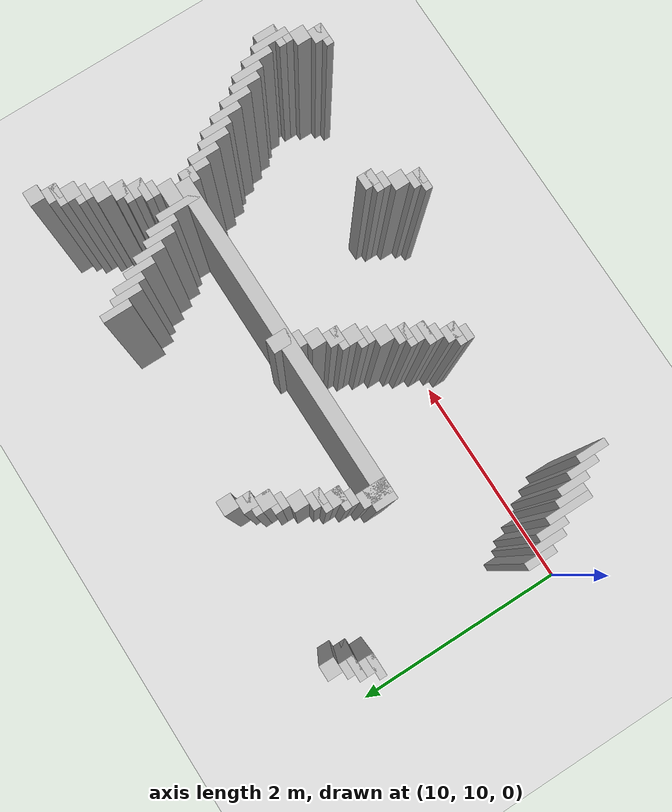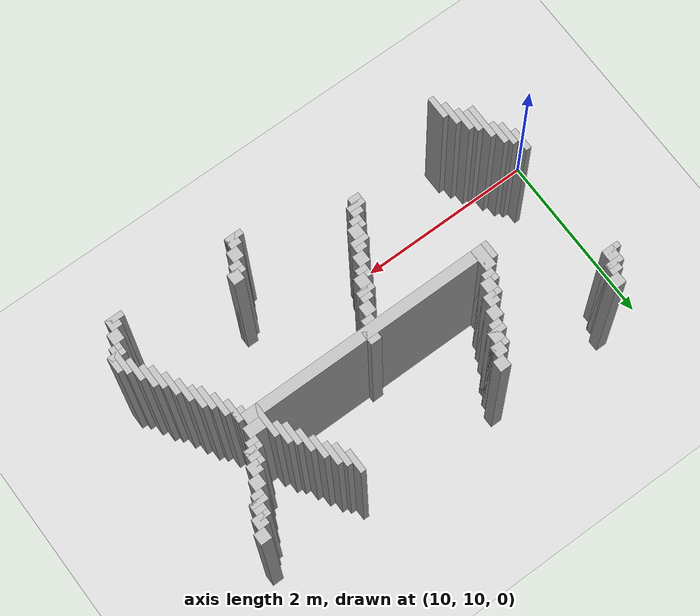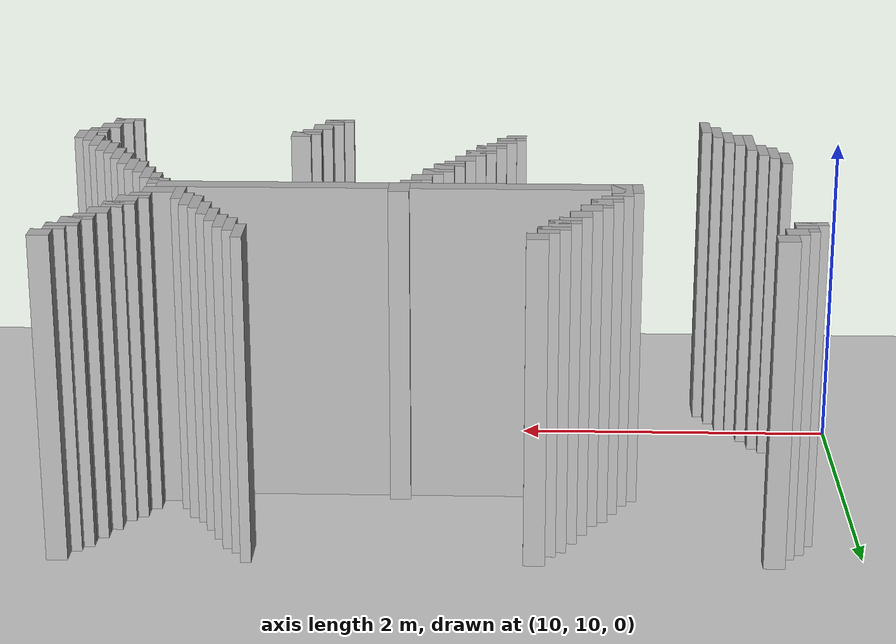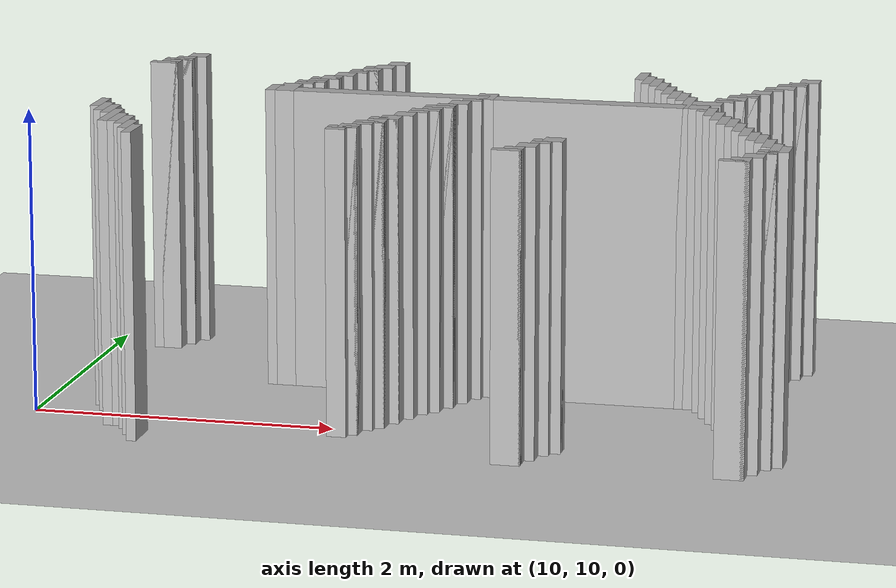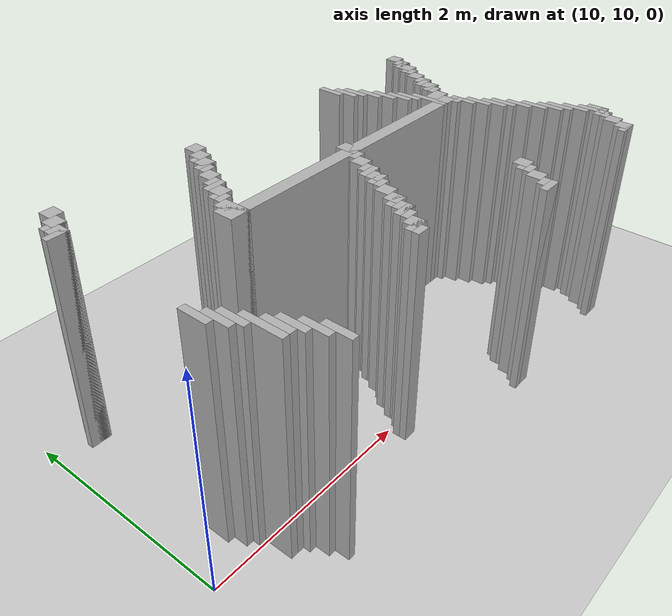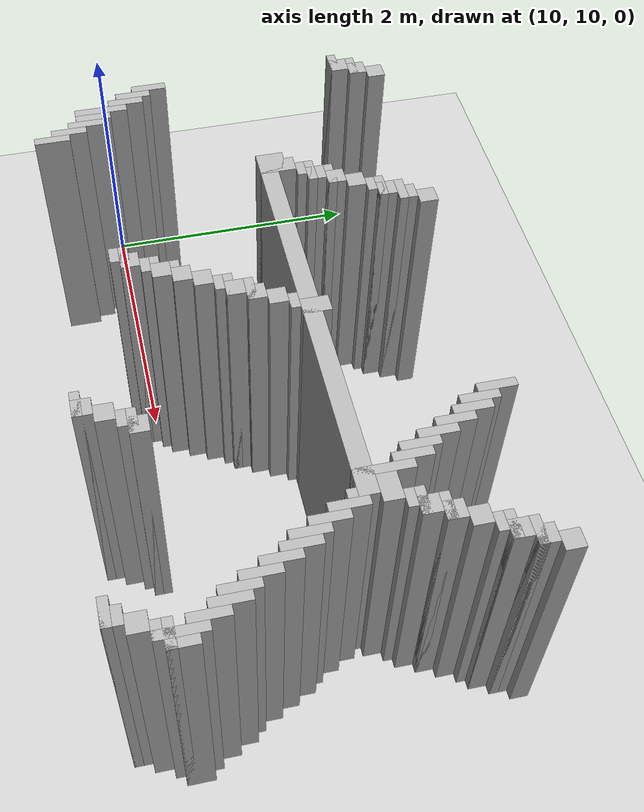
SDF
<sdf version="1.6">
 <world name="slam_world">
  <model name="ground_plane">
   <static>true</static>
   <link name="link">
    <collision name="collision">
     <geometry><plane><normal>0 0 1</normal><size>100 100</size></plane></geometry>
    </collision>
    <visual name="visual">
     <geometry><plane><normal>0 0 1</normal><size>100 100</size></plane></geometry>
     <material>
      <ambient>0.8 0.8 0.8 1</ambient>
      <diffuse>0.8 0.8 0.8 1</diffuse>
      <specular>0.8 0.8 0.8 1</specular>
     </material>
    </visual>
   </link>
  </model>
  <model name="wall_1165">
   <static>true</static>
   <pose>10.53191489361702 12.063829787234042 1.0 0 0 0</pose>
   <link name="link">
    <collision name="collision">
     <geometry><box><size>0.1276595744680851 0.1276595744680851 2.0</size></box></geometry>
    </collision>
    <visual name="visual">
     <geometry><box><size>0.1276595744680851 0.1276595744680851 2.0</size></box></geometry>
     <material><ambient>0.5 0.5 0.5 1</ambient><diffuse>0.7 0.7 0.7 1</diffuse></material>
    </visual>
   </link>
  </model>
  <model name="wall_1166">
   <static>true</static>
   <pose>11.936170212765957 12.063829787234042 1.0 0 0 0</pose>
   <link name="link">
    <collision name="collision">
     <geometry><box><size>0.1276595744680851 0.1276595744680851 2.0</size></box></geometry>
    </collision>
    <visual name="visual">
     <geometry><box><size>0.1276595744680851 0.1276595744680851 2.0</size></box></geometry>
     <material><ambient>0.5 0.5 0.5 1</ambient><diffuse>0.7 0.7 0.7 1</diffuse></material>
    </visual>
   </link>
  </model>
  <model name="wall_1167">
   <static>true</static>
   <pose>13.627659574468083 11.999999999999998 1.0 0 0 0</pose>
   <link name="link">
    <collision name="collision">
     <geometry><box><size>0.06382978723404255 0.2553191489361702 2.0</size></box></geometry>
    </collision>
    <visual name="visual">
     <geometry><box><size>0.06382978723404255 0.2553191489361702 2.0</size></box></geometry>
     <material><ambient>0.5 0.5 0.5 1</ambient><diffuse>0.7 0.7 0.7 1</diffuse></material>
    </visual>
   </link>
  </model>
  <model name="wall_1168">
   <static>true</static>
   <pose>14.744680851063828 12.063829787234042 1.0 0 0 0</pose>
   <link name="link">
    <collision name="collision">
     <geometry><box><size>0.1276595744680851 0.1276595744680851 2.0</size></box></geometry>
    </collision>
    <visual name="visual">
     <geometry><box><size>0.1276595744680851 0.1276595744680851 2.0</size></box></geometry>
     <material><ambient>0.5 0.5 0.5 1</ambient><diffuse>0.7 0.7 0.7 1</diffuse></material>
    </visual>
   </link>
  </model>
  <model name="wall_1175">
   <static>true</static>
   <pose>10.468085106382977 11.936170212765957 1.0 0 0 0</pose>
   <link name="link">
    <collision name="collision">
     <geometry><box><size>0.1276595744680851 0.1276595744680851 2.0</size></box></geometry>
    </collision>
    <visual name="visual">
     <geometry><box><size>0.1276595744680851 0.1276595744680851 2.0</size></box></geometry>
     <material><ambient>0.5 0.5 0.5 1</ambient><diffuse>0.7 0.7 0.7 1</diffuse></material>
    </visual>
   </link>
  </model>
  <model name="wall_1176">
   <static>true</static>
   <pose>11.872340425531913 11.936170212765957 1.0 0 0 0</pose>
   <link name="link">
    <collision name="collision">
     <geometry><box><size>0.1276595744680851 0.1276595744680851 2.0</size></box></geometry>
    </collision>
    <visual name="visual">
     <geometry><box><size>0.1276595744680851 0.1276595744680851 2.0</size></box></geometry>
     <material><ambient>0.5 0.5 0.5 1</ambient><diffuse>0.7 0.7 0.7 1</diffuse></material>
    </visual>
   </link>
  </model>
  <model name="wall_1177">
   <static>true</static>
   <pose>13.691489361702127 11.872340425531913 1.0 0 0 0</pose>
   <link name="link">
    <collision name="collision">
     <geometry><box><size>0.06382978723404255 0.2553191489361702 2.0</size></box></geometry>
    </collision>
    <visual name="visual">
     <geometry><box><size>0.06382978723404255 0.2553191489361702 2.0</size></box></geometry>
     <material><ambient>0.5 0.5 0.5 1</ambient><diffuse>0.7 0.7 0.7 1</diffuse></material>
    </visual>
   </link>
  </model>
  <model name="wall_1178">
   <static>true</static>
   <pose>14.680851063829786 11.936170212765957 1.0 0 0 0</pose>
   <link name="link">
    <collision name="collision">
     <geometry><box><size>0.1276595744680851 0.1276595744680851 2.0</size></box></geometry>
    </collision>
    <visual name="visual">
     <geometry><box><size>0.1276595744680851 0.1276595744680851 2.0</size></box></geometry>
     <material><ambient>0.5 0.5 0.5 1</ambient><diffuse>0.7 0.7 0.7 1</diffuse></material>
    </visual>
   </link>
  </model>
  <model name="wall_1185">
   <static>true</static>
   <pose>10.436170212765957 11.904255319148936 1.0 0 0 0</pose>
   <link name="link">
    <collision name="collision">
     <geometry><box><size>0.19148936170212766 0.06382978723404255 2.0</size></box></geometry>
    </collision>
    <visual name="visual">
     <geometry><box><size>0.19148936170212766 0.06382978723404255 2.0</size></box></geometry>
     <material><ambient>0.5 0.5 0.5 1</ambient><diffuse>0.7 0.7 0.7 1</diffuse></material>
    </visual>
   </link>
  </model>
  <model name="wall_1186">
   <static>true</static>
   <pose>11.840425531914892 11.904255319148936 1.0 0 0 0</pose>
   <link name="link">
    <collision name="collision">
     <geometry><box><size>0.19148936170212766 0.06382978723404255 2.0</size></box></geometry>
    </collision>
    <visual name="visual">
     <geometry><box><size>0.19148936170212766 0.06382978723404255 2.0</size></box></geometry>
     <material><ambient>0.5 0.5 0.5 1</ambient><diffuse>0.7 0.7 0.7 1</diffuse></material>
    </visual>
   </link>
  </model>
  <model name="wall_1187">
   <static>true</static>
   <pose>13.755319148936168 11.808510638297872 1.0 0 0 0</pose>
   <link name="link">
    <collision name="collision">
     <geometry><box><size>0.06382978723404255 0.2553191489361702 2.0</size></box></geometry>
    </collision>
    <visual name="visual">
     <geometry><box><size>0.06382978723404255 0.2553191489361702 2.0</size></box></geometry>
     <material><ambient>0.5 0.5 0.5 1</ambient><diffuse>0.7 0.7 0.7 1</diffuse></material>
    </visual>
   </link>
  </model>
  <model name="wall_1188">
   <static>true</static>
   <pose>14.648936170212766 11.904255319148936 1.0 0 0 0</pose>
   <link name="link">
    <collision name="collision">
     <geometry><box><size>0.19148936170212766 0.06382978723404255 2.0</size></box></geometry>
    </collision>
    <visual name="visual">
     <geometry><box><size>0.19148936170212766 0.06382978723404255 2.0</size></box></geometry>
     <material><ambient>0.5 0.5 0.5 1</ambient><diffuse>0.7 0.7 0.7 1</diffuse></material>
    </visual>
   </link>
  </model>
  <model name="wall_1193">
   <static>true</static>
   <pose>10.404255319148936 11.808510638297872 1.0 0 0 0</pose>
   <link name="link">
    <collision name="collision">
     <geometry><box><size>0.1276595744680851 0.1276595744680851 2.0</size></box></geometry>
    </collision>
    <visual name="visual">
     <geometry><box><size>0.1276595744680851 0.1276595744680851 2.0</size></box></geometry>
     <material><ambient>0.5 0.5 0.5 1</ambient><diffuse>0.7 0.7 0.7 1</diffuse></material>
    </visual>
   </link>
  </model>
  <model name="wall_1194">
   <static>true</static>
   <pose>11.808510638297872 11.808510638297872 1.0 0 0 0</pose>
   <link name="link">
    <collision name="collision">
     <geometry><box><size>0.1276595744680851 0.1276595744680851 2.0</size></box></geometry>
    </collision>
    <visual name="visual">
     <geometry><box><size>0.1276595744680851 0.1276595744680851 2.0</size></box></geometry>
     <material><ambient>0.5 0.5 0.5 1</ambient><diffuse>0.7 0.7 0.7 1</diffuse></material>
    </visual>
   </link>
  </model>
  <model name="wall_1195">
   <static>true</static>
   <pose>14.617021276595743 11.808510638297872 1.0 0 0 0</pose>
   <link name="link">
    <collision name="collision">
     <geometry><box><size>0.1276595744680851 0.1276595744680851 2.0</size></box></geometry>
    </collision>
    <visual name="visual">
     <geometry><box><size>0.1276595744680851 0.1276595744680851 2.0</size></box></geometry>
     <material><ambient>0.5 0.5 0.5 1</ambient><diffuse>0.7 0.7 0.7 1</diffuse></material>
    </visual>
   </link>
  </model>
  <model name="wall_1202">
   <static>true</static>
   <pose>10.372340425531915 11.77659574468085 1.0 0 0 0</pose>
   <link name="link">
    <collision name="collision">
     <geometry><box><size>0.19148936170212766 0.06382978723404255 2.0</size></box></geometry>
    </collision>
    <visual name="visual">
     <geometry><box><size>0.19148936170212766 0.06382978723404255 2.0</size></box></geometry>
     <material><ambient>0.5 0.5 0.5 1</ambient><diffuse>0.7 0.7 0.7 1</diffuse></material>
    </visual>
   </link>
  </model>
  <model name="wall_1203">
   <static>true</static>
   <pose>11.77659574468085 11.77659574468085 1.0 0 0 0</pose>
   <link name="link">
    <collision name="collision">
     <geometry><box><size>0.19148936170212766 0.06382978723404255 2.0</size></box></geometry>
    </collision>
    <visual name="visual">
     <geometry><box><size>0.19148936170212766 0.06382978723404255 2.0</size></box></geometry>
     <material><ambient>0.5 0.5 0.5 1</ambient><diffuse>0.7 0.7 0.7 1</diffuse></material>
    </visual>
   </link>
  </model>
  <model name="wall_1204">
   <static>true</static>
   <pose>13.819148936170212 11.680851063829786 1.0 0 0 0</pose>
   <link name="link">
    <collision name="collision">
     <geometry><box><size>0.06382978723404255 0.2553191489361702 2.0</size></box></geometry>
    </collision>
    <visual name="visual">
     <geometry><box><size>0.06382978723404255 0.2553191489361702 2.0</size></box></geometry>
     <material><ambient>0.5 0.5 0.5 1</ambient><diffuse>0.7 0.7 0.7 1</diffuse></material>
    </visual>
   </link>
  </model>
  <model name="wall_1205">
   <static>true</static>
   <pose>14.585106382978722 11.77659574468085 1.0 0 0 0</pose>
   <link name="link">
    <collision name="collision">
     <geometry><box><size>0.19148936170212766 0.06382978723404255 2.0</size></box></geometry>
    </collision>
    <visual name="visual">
     <geometry><box><size>0.19148936170212766 0.06382978723404255 2.0</size></box></geometry>
     <material><ambient>0.5 0.5 0.5 1</ambient><diffuse>0.7 0.7 0.7 1</diffuse></material>
    </visual>
   </link>
  </model>
  <model name="wall_1210">
   <static>true</static>
   <pose>11.744680851063828 11.712765957446807 1.0 0 0 0</pose>
   <link name="link">
    <collision name="collision">
     <geometry><box><size>0.1276595744680851 0.06382978723404255 2.0</size></box></geometry>
    </collision>
    <visual name="visual">
     <geometry><box><size>0.1276595744680851 0.06382978723404255 2.0</size></box></geometry>
     <material><ambient>0.5 0.5 0.5 1</ambient><diffuse>0.7 0.7 0.7 1</diffuse></material>
    </visual>
   </link>
  </model>
  <model name="wall_1211">
   <static>true</static>
   <pose>14.553191489361701 11.712765957446807 1.0 0 0 0</pose>
   <link name="link">
    <collision name="collision">
     <geometry><box><size>0.1276595744680851 0.06382978723404255 2.0</size></box></geometry>
    </collision>
    <visual name="visual">
     <geometry><box><size>0.1276595744680851 0.06382978723404255 2.0</size></box></geometry>
     <material><ambient>0.5 0.5 0.5 1</ambient><diffuse>0.7 0.7 0.7 1</diffuse></material>
    </visual>
   </link>
  </model>
  <model name="wall_1219">
   <static>true</static>
   <pose>11.680851063829786 11.617021276595743 1.0 0 0 0</pose>
   <link name="link">
    <collision name="collision">
     <geometry><box><size>0.1276595744680851 0.1276595744680851 2.0</size></box></geometry>
    </collision>
    <visual name="visual">
     <geometry><box><size>0.1276595744680851 0.1276595744680851 2.0</size></box></geometry>
     <material><ambient>0.5 0.5 0.5 1</ambient><diffuse>0.7 0.7 0.7 1</diffuse></material>
    </visual>
   </link>
  </model>
  <model name="wall_1220">
   <static>true</static>
   <pose>13.882978723404253 11.553191489361701 1.0 0 0 0</pose>
   <link name="link">
    <collision name="collision">
     <geometry><box><size>0.06382978723404255 0.2553191489361702 2.0</size></box></geometry>
    </collision>
    <visual name="visual">
     <geometry><box><size>0.06382978723404255 0.2553191489361702 2.0</size></box></geometry>
     <material><ambient>0.5 0.5 0.5 1</ambient><diffuse>0.7 0.7 0.7 1</diffuse></material>
    </visual>
   </link>
  </model>
  <model name="wall_1221">
   <static>true</static>
   <pose>14.489361702127658 11.617021276595743 1.0 0 0 0</pose>
   <link name="link">
    <collision name="collision">
     <geometry><box><size>0.1276595744680851 0.1276595744680851 2.0</size></box></geometry>
    </collision>
    <visual name="visual">
     <geometry><box><size>0.1276595744680851 0.1276595744680851 2.0</size></box></geometry>
     <material><ambient>0.5 0.5 0.5 1</ambient><diffuse>0.7 0.7 0.7 1</diffuse></material>
    </visual>
   </link>
  </model>
  <model name="wall_1229">
   <static>true</static>
   <pose>11.617021276595743 11.489361702127658 1.0 0 0 0</pose>
   <link name="link">
    <collision name="collision">
     <geometry><box><size>0.1276595744680851 0.1276595744680851 2.0</size></box></geometry>
    </collision>
    <visual name="visual">
     <geometry><box><size>0.1276595744680851 0.1276595744680851 2.0</size></box></geometry>
     <material><ambient>0.5 0.5 0.5 1</ambient><diffuse>0.7 0.7 0.7 1</diffuse></material>
    </visual>
   </link>
  </model>
  <model name="wall_1230">
   <static>true</static>
   <pose>13.946808510638297 11.425531914893616 1.0 0 0 0</pose>
   <link name="link">
    <collision name="collision">
     <geometry><box><size>0.06382978723404255 0.2553191489361702 2.0</size></box></geometry>
    </collision>
    <visual name="visual">
     <geometry><box><size>0.06382978723404255 0.2553191489361702 2.0</size></box></geometry>
     <material><ambient>0.5 0.5 0.5 1</ambient><diffuse>0.7 0.7 0.7 1</diffuse></material>
    </visual>
   </link>
  </model>
  <model name="wall_1231">
   <static>true</static>
   <pose>14.425531914893616 11.489361702127658 1.0 0 0 0</pose>
   <link name="link">
    <collision name="collision">
     <geometry><box><size>0.1276595744680851 0.1276595744680851 2.0</size></box></geometry>
    </collision>
    <visual name="visual">
     <geometry><box><size>0.1276595744680851 0.1276595744680851 2.0</size></box></geometry>
     <material><ambient>0.5 0.5 0.5 1</ambient><diffuse>0.7 0.7 0.7 1</diffuse></material>
    </visual>
   </link>
  </model>
  <model name="wall_1239">
   <static>true</static>
   <pose>11.585106382978722 11.457446808510637 1.0 0 0 0</pose>
   <link name="link">
    <collision name="collision">
     <geometry><box><size>0.19148936170212766 0.06382978723404255 2.0</size></box></geometry>
    </collision>
    <visual name="visual">
     <geometry><box><size>0.19148936170212766 0.06382978723404255 2.0</size></box></geometry>
     <material><ambient>0.5 0.5 0.5 1</ambient><diffuse>0.7 0.7 0.7 1</diffuse></material>
    </visual>
   </link>
  </model>
  <model name="wall_1240">
   <static>true</static>
   <pose>14.010638297872338 11.361702127659573 1.0 0 0 0</pose>
   <link name="link">
    <collision name="collision">
     <geometry><box><size>0.06382978723404255 0.2553191489361702 2.0</size></box></geometry>
    </collision>
    <visual name="visual">
     <geometry><box><size>0.06382978723404255 0.2553191489361702 2.0</size></box></geometry>
     <material><ambient>0.5 0.5 0.5 1</ambient><diffuse>0.7 0.7 0.7 1</diffuse></material>
    </visual>
   </link>
  </model>
  <model name="wall_1241">
   <static>true</static>
   <pose>14.393617021276595 11.457446808510637 1.0 0 0 0</pose>
   <link name="link">
    <collision name="collision">
     <geometry><box><size>0.19148936170212766 0.06382978723404255 2.0</size></box></geometry>
    </collision>
    <visual name="visual">
     <geometry><box><size>0.19148936170212766 0.06382978723404255 2.0</size></box></geometry>
     <material><ambient>0.5 0.5 0.5 1</ambient><diffuse>0.7 0.7 0.7 1</diffuse></material>
    </visual>
   </link>
  </model>
  <model name="wall_1246">
   <static>true</static>
   <pose>11.553191489361701 11.361702127659573 1.0 0 0 0</pose>
   <link name="link">
    <collision name="collision">
     <geometry><box><size>0.1276595744680851 0.1276595744680851 2.0</size></box></geometry>
    </collision>
    <visual name="visual">
     <geometry><box><size>0.1276595744680851 0.1276595744680851 2.0</size></box></geometry>
     <material><ambient>0.5 0.5 0.5 1</ambient><diffuse>0.7 0.7 0.7 1</diffuse></material>
    </visual>
   </link>
  </model>
  <model name="wall_1247">
   <static>true</static>
   <pose>14.361702127659573 11.361702127659573 1.0 0 0 0</pose>
   <link name="link">
    <collision name="collision">
     <geometry><box><size>0.1276595744680851 0.1276595744680851 2.0</size></box></geometry>
    </collision>
    <visual name="visual">
     <geometry><box><size>0.1276595744680851 0.1276595744680851 2.0</size></box></geometry>
     <material><ambient>0.5 0.5 0.5 1</ambient><diffuse>0.7 0.7 0.7 1</diffuse></material>
    </visual>
   </link>
  </model>
  <model name="wall_1255">
   <static>true</static>
   <pose>11.52127659574468 11.329787234042552 1.0 0 0 0</pose>
   <link name="link">
    <collision name="collision">
     <geometry><box><size>0.19148936170212766 0.06382978723404255 2.0</size></box></geometry>
    </collision>
    <visual name="visual">
     <geometry><box><size>0.19148936170212766 0.06382978723404255 2.0</size></box></geometry>
     <material><ambient>0.5 0.5 0.5 1</ambient><diffuse>0.7 0.7 0.7 1</diffuse></material>
    </visual>
   </link>
  </model>
  <model name="wall_1256">
   <static>true</static>
   <pose>14.074468085106382 11.170212765957446 1.0 0 0 0</pose>
   <link name="link">
    <collision name="collision">
     <geometry><box><size>0.06382978723404255 0.3829787234042553 2.0</size></box></geometry>
    </collision>
    <visual name="visual">
     <geometry><box><size>0.06382978723404255 0.3829787234042553 2.0</size></box></geometry>
     <material><ambient>0.5 0.5 0.5 1</ambient><diffuse>0.7 0.7 0.7 1</diffuse></material>
    </visual>
   </link>
  </model>
  <model name="wall_1257">
   <static>true</static>
   <pose>14.329787234042552 11.329787234042552 1.0 0 0 0</pose>
   <link name="link">
    <collision name="collision">
     <geometry><box><size>0.19148936170212766 0.06382978723404255 2.0</size></box></geometry>
    </collision>
    <visual name="visual">
     <geometry><box><size>0.19148936170212766 0.06382978723404255 2.0</size></box></geometry>
     <material><ambient>0.5 0.5 0.5 1</ambient><diffuse>0.7 0.7 0.7 1</diffuse></material>
    </visual>
   </link>
  </model>
  <model name="wall_1262">
   <static>true</static>
   <pose>11.489361702127658 11.26595744680851 1.0 0 0 0</pose>
   <link name="link">
    <collision name="collision">
     <geometry><box><size>0.1276595744680851 0.06382978723404255 2.0</size></box></geometry>
    </collision>
    <visual name="visual">
     <geometry><box><size>0.1276595744680851 0.06382978723404255 2.0</size></box></geometry>
     <material><ambient>0.5 0.5 0.5 1</ambient><diffuse>0.7 0.7 0.7 1</diffuse></material>
    </visual>
   </link>
  </model>
  <model name="wall_1263">
   <static>true</static>
   <pose>14.297872340425531 11.26595744680851 1.0 0 0 0</pose>
   <link name="link">
    <collision name="collision">
     <geometry><box><size>0.1276595744680851 0.06382978723404255 2.0</size></box></geometry>
    </collision>
    <visual name="visual">
     <geometry><box><size>0.1276595744680851 0.06382978723404255 2.0</size></box></geometry>
     <material><ambient>0.5 0.5 0.5 1</ambient><diffuse>0.7 0.7 0.7 1</diffuse></material>
    </visual>
   </link>
  </model>
  <model name="wall_1269">
   <static>true</static>
   <pose>11.425531914893616 11.106382978723403 1.0 0 0 0</pose>
   <link name="link">
    <collision name="collision">
     <geometry><box><size>0.1276595744680851 0.2553191489361702 2.0</size></box></geometry>
    </collision>
    <visual name="visual">
     <geometry><box><size>0.1276595744680851 0.2553191489361702 2.0</size></box></geometry>
     <material><ambient>0.5 0.5 0.5 1</ambient><diffuse>0.7 0.7 0.7 1</diffuse></material>
    </visual>
   </link>
  </model>
  <model name="wall_1270">
   <static>true</static>
   <pose>14.202127659574467 11.170212765957446 1.0 0 0 0</pose>
   <link name="link">
    <collision name="collision">
     <geometry><box><size>0.19148936170212766 0.1276595744680851 2.0</size></box></geometry>
    </collision>
    <visual name="visual">
     <geometry><box><size>0.19148936170212766 0.1276595744680851 2.0</size></box></geometry>
     <material><ambient>0.5 0.5 0.5 1</ambient><diffuse>0.7 0.7 0.7 1</diffuse></material>
    </visual>
   </link>
  </model>
  <model name="wall_1275">
   <static>true</static>
   <pose>11.393617021276595 11.074468085106382 1.0 0 0 0</pose>
   <link name="link">
    <collision name="collision">
     <geometry><box><size>0.19148936170212766 0.19148936170212766 2.0</size></box></geometry>
    </collision>
    <visual name="visual">
     <geometry><box><size>0.19148936170212766 0.19148936170212766 2.0</size></box></geometry>
     <material><ambient>0.5 0.5 0.5 1</ambient><diffuse>0.7 0.7 0.7 1</diffuse></material>
    </visual>
   </link>
  </model>
  <model name="wall_1276">
   <static>true</static>
   <pose>12.76595744680851 11.074468085106382 1.0 0 0 0</pose>
   <link name="link">
    <collision name="collision">
     <geometry><box><size>0.1276595744680851 0.19148936170212766 2.0</size></box></geometry>
    </collision>
    <visual name="visual">
     <geometry><box><size>0.1276595744680851 0.19148936170212766 2.0</size></box></geometry>
     <material><ambient>0.5 0.5 0.5 1</ambient><diffuse>0.7 0.7 0.7 1</diffuse></material>
    </visual>
   </link>
  </model>
  <model name="wall_1282">
   <static>true</static>
   <pose>12.861702127659573 11.042553191489361 1.0 0 0 0</pose>
   <link name="link">
    <collision name="collision">
     <geometry><box><size>2.7446808510638294 0.1276595744680851 2.0</size></box></geometry>
    </collision>
    <visual name="visual">
     <geometry><box><size>2.7446808510638294 0.1276595744680851 2.0</size></box></geometry>
     <material><ambient>0.5 0.5 0.5 1</ambient><diffuse>0.7 0.7 0.7 1</diffuse></material>
    </visual>
   </link>
  </model>
  <model name="wall_1288">
   <static>true</static>
   <pose>14.265957446808509 10.914893617021276 1.0 0 0 0</pose>
   <link name="link">
    <collision name="collision">
     <geometry><box><size>0.06382978723404255 0.2553191489361702 2.0</size></box></geometry>
    </collision>
    <visual name="visual">
     <geometry><box><size>0.06382978723404255 0.2553191489361702 2.0</size></box></geometry>
     <material><ambient>0.5 0.5 0.5 1</ambient><diffuse>0.7 0.7 0.7 1</diffuse></material>
    </visual>
   </link>
  </model>
  <model name="wall_1294">
   <static>true</static>
   <pose>12.702127659574467 10.946808510638297 1.0 0 0 0</pose>
   <link name="link">
    <collision name="collision">
     <geometry><box><size>0.1276595744680851 0.06382978723404255 2.0</size></box></geometry>
    </collision>
    <visual name="visual">
     <geometry><box><size>0.1276595744680851 0.06382978723404255 2.0</size></box></geometry>
     <material><ambient>0.5 0.5 0.5 1</ambient><diffuse>0.7 0.7 0.7 1</diffuse></material>
    </visual>
   </link>
  </model>
  <model name="wall_1295">
   <static>true</static>
   <pose>14.234042553191488 10.946808510638297 1.0 0 0 0</pose>
   <link name="link">
    <collision name="collision">
     <geometry><box><size>0.1276595744680851 0.06382978723404255 2.0</size></box></geometry>
    </collision>
    <visual name="visual">
     <geometry><box><size>0.1276595744680851 0.06382978723404255 2.0</size></box></geometry>
     <material><ambient>0.5 0.5 0.5 1</ambient><diffuse>0.7 0.7 0.7 1</diffuse></material>
    </visual>
   </link>
  </model>
  <model name="wall_1301">
   <static>true</static>
   <pose>12.638297872340425 10.851063829787233 1.0 0 0 0</pose>
   <link name="link">
    <collision name="collision">
     <geometry><box><size>0.1276595744680851 0.1276595744680851 2.0</size></box></geometry>
    </collision>
    <visual name="visual">
     <geometry><box><size>0.1276595744680851 0.1276595744680851 2.0</size></box></geometry>
     <material><ambient>0.5 0.5 0.5 1</ambient><diffuse>0.7 0.7 0.7 1</diffuse></material>
    </visual>
   </link>
  </model>
  <model name="wall_1302">
   <static>true</static>
   <pose>14.329787234042552 10.787234042553191 1.0 0 0 0</pose>
   <link name="link">
    <collision name="collision">
     <geometry><box><size>0.06382978723404255 0.2553191489361702 2.0</size></box></geometry>
    </collision>
    <visual name="visual">
     <geometry><box><size>0.06382978723404255 0.2553191489361702 2.0</size></box></geometry>
     <material><ambient>0.5 0.5 0.5 1</ambient><diffuse>0.7 0.7 0.7 1</diffuse></material>
    </visual>
   </link>
  </model>
  <model name="wall_1308">
   <static>true</static>
   <pose>12.574468085106382 10.723404255319148 1.0 0 0 0</pose>
   <link name="link">
    <collision name="collision">
     <geometry><box><size>0.1276595744680851 0.1276595744680851 2.0</size></box></geometry>
    </collision>
    <visual name="visual">
     <geometry><box><size>0.1276595744680851 0.1276595744680851 2.0</size></box></geometry>
     <material><ambient>0.5 0.5 0.5 1</ambient><diffuse>0.7 0.7 0.7 1</diffuse></material>
    </visual>
   </link>
  </model>
  <model name="wall_1309">
   <static>true</static>
   <pose>14.393617021276595 10.659574468085106 1.0 0 0 0</pose>
   <link name="link">
    <collision name="collision">
     <geometry><box><size>0.06382978723404255 0.2553191489361702 2.0</size></box></geometry>
    </collision>
    <visual name="visual">
     <geometry><box><size>0.06382978723404255 0.2553191489361702 2.0</size></box></geometry>
     <material><ambient>0.5 0.5 0.5 1</ambient><diffuse>0.7 0.7 0.7 1</diffuse></material>
    </visual>
   </link>
  </model>
  <model name="wall_1315">
   <static>true</static>
   <pose>12.542553191489361 10.691489361702127 1.0 0 0 0</pose>
   <link name="link">
    <collision name="collision">
     <geometry><box><size>0.19148936170212766 0.06382978723404255 2.0</size></box></geometry>
    </collision>
    <visual name="visual">
     <geometry><box><size>0.19148936170212766 0.06382978723404255 2.0</size></box></geometry>
     <material><ambient>0.5 0.5 0.5 1</ambient><diffuse>0.7 0.7 0.7 1</diffuse></material>
    </visual>
   </link>
  </model>
  <model name="wall_1316">
   <static>true</static>
   <pose>14.457446808510637 10.595744680851062 1.0 0 0 0</pose>
   <link name="link">
    <collision name="collision">
     <geometry><box><size>0.06382978723404255 0.2553191489361702 2.0</size></box></geometry>
    </collision>
    <visual name="visual">
     <geometry><box><size>0.06382978723404255 0.2553191489361702 2.0</size></box></geometry>
     <material><ambient>0.5 0.5 0.5 1</ambient><diffuse>0.7 0.7 0.7 1</diffuse></material>
    </visual>
   </link>
  </model>
  <model name="wall_1318">
   <static>true</static>
   <pose>12.51063829787234 10.595744680851062 1.0 0 0 0</pose>
   <link name="link">
    <collision name="collision">
     <geometry><box><size>0.1276595744680851 0.1276595744680851 2.0</size></box></geometry>
    </collision>
    <visual name="visual">
     <geometry><box><size>0.1276595744680851 0.1276595744680851 2.0</size></box></geometry>
     <material><ambient>0.5 0.5 0.5 1</ambient><diffuse>0.7 0.7 0.7 1</diffuse></material>
    </visual>
   </link>
  </model>
  <model name="wall_1324">
   <static>true</static>
   <pose>12.478723404255318 10.563829787234042 1.0 0 0 0</pose>
   <link name="link">
    <collision name="collision">
     <geometry><box><size>0.19148936170212766 0.06382978723404255 2.0</size></box></geometry>
    </collision>
    <visual name="visual">
     <geometry><box><size>0.19148936170212766 0.06382978723404255 2.0</size></box></geometry>
     <material><ambient>0.5 0.5 0.5 1</ambient><diffuse>0.7 0.7 0.7 1</diffuse></material>
    </visual>
   </link>
  </model>
  <model name="wall_1325">
   <static>true</static>
   <pose>14.52127659574468 10.468085106382977 1.0 0 0 0</pose>
   <link name="link">
    <collision name="collision">
     <geometry><box><size>0.06382978723404255 0.2553191489361702 2.0</size></box></geometry>
    </collision>
    <visual name="visual">
     <geometry><box><size>0.06382978723404255 0.2553191489361702 2.0</size></box></geometry>
     <material><ambient>0.5 0.5 0.5 1</ambient><diffuse>0.7 0.7 0.7 1</diffuse></material>
    </visual>
   </link>
  </model>
  <model name="wall_1327">
   <static>true</static>
   <pose>12.446808510638297 10.5 1.0 0 0 0</pose>
   <link name="link">
    <collision name="collision">
     <geometry><box><size>0.1276595744680851 0.06382978723404255 2.0</size></box></geometry>
    </collision>
    <visual name="visual">
     <geometry><box><size>0.1276595744680851 0.06382978723404255 2.0</size></box></geometry>
     <material><ambient>0.5 0.5 0.5 1</ambient><diffuse>0.7 0.7 0.7 1</diffuse></material>
    </visual>
   </link>
  </model>
  <model name="wall_1332">
   <static>true</static>
   <pose>10.372340425531915 10.340425531914892 1.0 0 0 0</pose>
   <link name="link">
    <collision name="collision">
     <geometry><box><size>0.06382978723404255 0.2553191489361702 2.0</size></box></geometry>
    </collision>
    <visual name="visual">
     <geometry><box><size>0.06382978723404255 0.2553191489361702 2.0</size></box></geometry>
     <material><ambient>0.5 0.5 0.5 1</ambient><diffuse>0.7 0.7 0.7 1</diffuse></material>
    </visual>
   </link>
  </model>
  <model name="wall_1333">
   <static>true</static>
   <pose>12.382978723404255 10.404255319148936 1.0 0 0 0</pose>
   <link name="link">
    <collision name="collision">
     <geometry><box><size>0.1276595744680851 0.1276595744680851 2.0</size></box></geometry>
    </collision>
    <visual name="visual">
     <geometry><box><size>0.1276595744680851 0.1276595744680851 2.0</size></box></geometry>
     <material><ambient>0.5 0.5 0.5 1</ambient><diffuse>0.7 0.7 0.7 1</diffuse></material>
    </visual>
   </link>
  </model>
  <model name="wall_1334">
   <static>true</static>
   <pose>14.585106382978722 10.340425531914892 1.0 0 0 0</pose>
   <link name="link">
    <collision name="collision">
     <geometry><box><size>0.06382978723404255 0.2553191489361702 2.0</size></box></geometry>
    </collision>
    <visual name="visual">
     <geometry><box><size>0.06382978723404255 0.2553191489361702 2.0</size></box></geometry>
     <material><ambient>0.5 0.5 0.5 1</ambient><diffuse>0.7 0.7 0.7 1</diffuse></material>
    </visual>
   </link>
  </model>
  <model name="wall_1339">
   <static>true</static>
   <pose>10.436170212765957 10.212765957446807 1.0 0 0 0</pose>
   <link name="link">
    <collision name="collision">
     <geometry><box><size>0.06382978723404255 0.2553191489361702 2.0</size></box></geometry>
    </collision>
    <visual name="visual">
     <geometry><box><size>0.06382978723404255 0.2553191489361702 2.0</size></box></geometry>
     <material><ambient>0.5 0.5 0.5 1</ambient><diffuse>0.7 0.7 0.7 1</diffuse></material>
    </visual>
   </link>
  </model>
  <model name="wall_1340">
   <static>true</static>
   <pose>12.319148936170212 10.27659574468085 1.0 0 0 0</pose>
   <link name="link">
    <collision name="collision">
     <geometry><box><size>0.1276595744680851 0.1276595744680851 2.0</size></box></geometry>
    </collision>
    <visual name="visual">
     <geometry><box><size>0.1276595744680851 0.1276595744680851 2.0</size></box></geometry>
     <material><ambient>0.5 0.5 0.5 1</ambient><diffuse>0.7 0.7 0.7 1</diffuse></material>
    </visual>
   </link>
  </model>
  <model name="wall_1341">
   <static>true</static>
   <pose>14.648936170212766 10.212765957446807 1.0 0 0 0</pose>
   <link name="link">
    <collision name="collision">
     <geometry><box><size>0.06382978723404255 0.2553191489361702 2.0</size></box></geometry>
    </collision>
    <visual name="visual">
     <geometry><box><size>0.06382978723404255 0.2553191489361702 2.0</size></box></geometry>
     <material><ambient>0.5 0.5 0.5 1</ambient><diffuse>0.7 0.7 0.7 1</diffuse></material>
    </visual>
   </link>
  </model>
  <model name="wall_1346">
   <static>true</static>
   <pose>10.5 10.148936170212766 1.0 0 0 0</pose>
   <link name="link">
    <collision name="collision">
     <geometry><box><size>0.06382978723404255 0.2553191489361702 2.0</size></box></geometry>
    </collision>
    <visual name="visual">
     <geometry><box><size>0.06382978723404255 0.2553191489361702 2.0</size></box></geometry>
     <material><ambient>0.5 0.5 0.5 1</ambient><diffuse>0.7 0.7 0.7 1</diffuse></material>
    </visual>
   </link>
  </model>
  <model name="wall_1347">
   <static>true</static>
   <pose>12.287234042553191 10.24468085106383 1.0 0 0 0</pose>
   <link name="link">
    <collision name="collision">
     <geometry><box><size>0.19148936170212766 0.06382978723404255 2.0</size></box></geometry>
    </collision>
    <visual name="visual">
     <geometry><box><size>0.19148936170212766 0.06382978723404255 2.0</size></box></geometry>
     <material><ambient>0.5 0.5 0.5 1</ambient><diffuse>0.7 0.7 0.7 1</diffuse></material>
    </visual>
   </link>
  </model>
  <model name="wall_1348">
   <static>true</static>
   <pose>14.712765957446807 10.148936170212766 1.0 0 0 0</pose>
   <link name="link">
    <collision name="collision">
     <geometry><box><size>0.06382978723404255 0.2553191489361702 2.0</size></box></geometry>
    </collision>
    <visual name="visual">
     <geometry><box><size>0.06382978723404255 0.2553191489361702 2.0</size></box></geometry>
     <material><ambient>0.5 0.5 0.5 1</ambient><diffuse>0.7 0.7 0.7 1</diffuse></material>
    </visual>
   </link>
  </model>
  <model name="wall_1350">
   <static>true</static>
   <pose>12.25531914893617 10.148936170212766 1.0 0 0 0</pose>
   <link name="link">
    <collision name="collision">
     <geometry><box><size>0.1276595744680851 0.1276595744680851 2.0</size></box></geometry>
    </collision>
    <visual name="visual">
     <geometry><box><size>0.1276595744680851 0.1276595744680851 2.0</size></box></geometry>
     <material><ambient>0.5 0.5 0.5 1</ambient><diffuse>0.7 0.7 0.7 1</diffuse></material>
    </visual>
   </link>
  </model>
  <model name="wall_1355">
   <static>true</static>
   <pose>10.563829787234042 9.957446808510637 1.0 0 0 0</pose>
   <link name="link">
    <collision name="collision">
     <geometry><box><size>0.06382978723404255 0.3829787234042553 2.0</size></box></geometry>
    </collision>
    <visual name="visual">
     <geometry><box><size>0.06382978723404255 0.3829787234042553 2.0</size></box></geometry>
     <material><ambient>0.5 0.5 0.5 1</ambient><diffuse>0.7 0.7 0.7 1</diffuse></material>
    </visual>
   </link>
  </model>
  <model name="wall_1356">
   <static>true</static>
   <pose>12.223404255319148 10.117021276595743 1.0 0 0 0</pose>
   <link name="link">
    <collision name="collision">
     <geometry><box><size>0.19148936170212766 0.06382978723404255 2.0</size></box></geometry>
    </collision>
    <visual name="visual">
     <geometry><box><size>0.19148936170212766 0.06382978723404255 2.0</size></box></geometry>
     <material><ambient>0.5 0.5 0.5 1</ambient><diffuse>0.7 0.7 0.7 1</diffuse></material>
    </visual>
   </link>
  </model>
  <model name="wall_1357">
   <static>true</static>
   <pose>14.77659574468085 10.02127659574468 1.0 0 0 0</pose>
   <link name="link">
    <collision name="collision">
     <geometry><box><size>0.06382978723404255 0.2553191489361702 2.0</size></box></geometry>
    </collision>
    <visual name="visual">
     <geometry><box><size>0.06382978723404255 0.2553191489361702 2.0</size></box></geometry>
     <material><ambient>0.5 0.5 0.5 1</ambient><diffuse>0.7 0.7 0.7 1</diffuse></material>
    </visual>
   </link>
  </model>
  <model name="wall_1359">
   <static>true</static>
   <pose>12.191489361702127 10.053191489361701 1.0 0 0 0</pose>
   <link name="link">
    <collision name="collision">
     <geometry><box><size>0.1276595744680851 0.06382978723404255 2.0</size></box></geometry>
    </collision>
    <visual name="visual">
     <geometry><box><size>0.1276595744680851 0.06382978723404255 2.0</size></box></geometry>
     <material><ambient>0.5 0.5 0.5 1</ambient><diffuse>0.7 0.7 0.7 1</diffuse></material>
    </visual>
   </link>
  </model>
  <model name="wall_1363">
   <static>true</static>
   <pose>10.627659574468085 9.893617021276595 1.0 0 0 0</pose>
   <link name="link">
    <collision name="collision">
     <geometry><box><size>0.06382978723404255 0.2553191489361702 2.0</size></box></geometry>
    </collision>
    <visual name="visual">
     <geometry><box><size>0.06382978723404255 0.2553191489361702 2.0</size></box></geometry>
     <material><ambient>0.5 0.5 0.5 1</ambient><diffuse>0.7 0.7 0.7 1</diffuse></material>
    </visual>
   </link>
  </model>
  <model name="wall_1364">
   <static>true</static>
   <pose>12.127659574468083 9.957446808510637 1.0 0 0 0</pose>
   <link name="link">
    <collision name="collision">
     <geometry><box><size>0.1276595744680851 0.1276595744680851 2.0</size></box></geometry>
    </collision>
    <visual name="visual">
     <geometry><box><size>0.1276595744680851 0.1276595744680851 2.0</size></box></geometry>
     <material><ambient>0.5 0.5 0.5 1</ambient><diffuse>0.7 0.7 0.7 1</diffuse></material>
    </visual>
   </link>
  </model>
  <model name="wall_1365">
   <static>true</static>
   <pose>14.840425531914892 9.861702127659573 1.0 0 0 0</pose>
   <link name="link">
    <collision name="collision">
     <geometry><box><size>0.06382978723404255 0.3191489361702127 2.0</size></box></geometry>
    </collision>
    <visual name="visual">
     <geometry><box><size>0.06382978723404255 0.3191489361702127 2.0</size></box></geometry>
     <material><ambient>0.5 0.5 0.5 1</ambient><diffuse>0.7 0.7 0.7 1</diffuse></material>
    </visual>
   </link>
  </model>
  <model name="wall_1370">
   <static>true</static>
   <pose>10.691489361702127 9.829787234042552 1.0 0 0 0</pose>
   <link name="link">
    <collision name="collision">
     <geometry><box><size>0.06382978723404255 0.2553191489361702 2.0</size></box></geometry>
    </collision>
    <visual name="visual">
     <geometry><box><size>0.06382978723404255 0.2553191489361702 2.0</size></box></geometry>
     <material><ambient>0.5 0.5 0.5 1</ambient><diffuse>0.7 0.7 0.7 1</diffuse></material>
    </visual>
   </link>
  </model>
  <model name="wall_1371">
   <static>true</static>
   <pose>12.095744680851062 9.925531914893616 1.0 0 0 0</pose>
   <link name="link">
    <collision name="collision">
     <geometry><box><size>0.19148936170212766 0.06382978723404255 2.0</size></box></geometry>
    </collision>
    <visual name="visual">
     <geometry><box><size>0.19148936170212766 0.06382978723404255 2.0</size></box></geometry>
     <material><ambient>0.5 0.5 0.5 1</ambient><diffuse>0.7 0.7 0.7 1</diffuse></material>
    </visual>
   </link>
  </model>
  <model name="wall_1372">
   <static>true</static>
   <pose>14.904255319148936 9.861702127659573 1.0 0 0 0</pose>
   <link name="link">
    <collision name="collision">
     <geometry><box><size>0.06382978723404255 0.19148936170212766 2.0</size></box></geometry>
    </collision>
    <visual name="visual">
     <geometry><box><size>0.06382978723404255 0.19148936170212766 2.0</size></box></geometry>
     <material><ambient>0.5 0.5 0.5 1</ambient><diffuse>0.7 0.7 0.7 1</diffuse></material>
    </visual>
   </link>
  </model>
  <model name="wall_1376">
   <static>true</static>
   <pose>12.063829787234042 9.861702127659573 1.0 0 0 0</pose>
   <link name="link">
    <collision name="collision">
     <geometry><box><size>0.1276595744680851 0.06382978723404255 2.0</size></box></geometry>
    </collision>
    <visual name="visual">
     <geometry><box><size>0.1276595744680851 0.06382978723404255 2.0</size></box></geometry>
     <material><ambient>0.5 0.5 0.5 1</ambient><diffuse>0.7 0.7 0.7 1</diffuse></material>
    </visual>
   </link>
  </model>
  <model name="wall_1377">
   <static>true</static>
   <pose>13.468085106382977 9.829787234042552 1.0 0 0 0</pose>
   <link name="link">
    <collision name="collision">
     <geometry><box><size>0.1276595744680851 0.1276595744680851 2.0</size></box></geometry>
    </collision>
    <visual name="visual">
     <geometry><box><size>0.1276595744680851 0.1276595744680851 2.0</size></box></geometry>
     <material><ambient>0.5 0.5 0.5 1</ambient><diffuse>0.7 0.7 0.7 1</diffuse></material>
    </visual>
   </link>
  </model>
  <model name="wall_1380">
   <static>true</static>
   <pose>10.75531914893617 9.702127659574467 1.0 0 0 0</pose>
   <link name="link">
    <collision name="collision">
     <geometry><box><size>0.06382978723404255 0.2553191489361702 2.0</size></box></geometry>
    </collision>
    <visual name="visual">
     <geometry><box><size>0.06382978723404255 0.2553191489361702 2.0</size></box></geometry>
     <material><ambient>0.5 0.5 0.5 1</ambient><diffuse>0.7 0.7 0.7 1</diffuse></material>
    </visual>
   </link>
  </model>
  <model name="wall_1381">
   <static>true</static>
   <pose>13.436170212765957 9.797872340425531 1.0 0 0 0</pose>
   <link name="link">
    <collision name="collision">
     <geometry><box><size>0.19148936170212766 0.06382978723404255 2.0</size></box></geometry>
    </collision>
    <visual name="visual">
     <geometry><box><size>0.19148936170212766 0.06382978723404255 2.0</size></box></geometry>
     <material><ambient>0.5 0.5 0.5 1</ambient><diffuse>0.7 0.7 0.7 1</diffuse></material>
    </visual>
   </link>
  </model>
  <model name="wall_1382">
   <static>true</static>
   <pose>14.840425531914892 9.797872340425531 1.0 0 0 0</pose>
   <link name="link">
    <collision name="collision">
     <geometry><box><size>0.19148936170212766 0.06382978723404255 2.0</size></box></geometry>
    </collision>
    <visual name="visual">
     <geometry><box><size>0.19148936170212766 0.06382978723404255 2.0</size></box></geometry>
     <material><ambient>0.5 0.5 0.5 1</ambient><diffuse>0.7 0.7 0.7 1</diffuse></material>
    </visual>
   </link>
  </model>
  <model name="wall_1387">
   <static>true</static>
   <pose>13.404255319148936 9.734042553191488 1.0 0 0 0</pose>
   <link name="link">
    <collision name="collision">
     <geometry><box><size>0.1276595744680851 0.06382978723404255 2.0</size></box></geometry>
    </collision>
    <visual name="visual">
     <geometry><box><size>0.1276595744680851 0.06382978723404255 2.0</size></box></geometry>
     <material><ambient>0.5 0.5 0.5 1</ambient><diffuse>0.7 0.7 0.7 1</diffuse></material>
    </visual>
   </link>
  </model>
  <model name="wall_1388">
   <static>true</static>
   <pose>14.808510638297872 9.734042553191488 1.0 0 0 0</pose>
   <link name="link">
    <collision name="collision">
     <geometry><box><size>0.1276595744680851 0.06382978723404255 2.0</size></box></geometry>
    </collision>
    <visual name="visual">
     <geometry><box><size>0.1276595744680851 0.06382978723404255 2.0</size></box></geometry>
     <material><ambient>0.5 0.5 0.5 1</ambient><diffuse>0.7 0.7 0.7 1</diffuse></material>
    </visual>
   </link>
  </model>
  <model name="wall_1394">
   <static>true</static>
   <pose>10.819148936170212 9.574468085106382 1.0 0 0 0</pose>
   <link name="link">
    <collision name="collision">
     <geometry><box><size>0.06382978723404255 0.2553191489361702 2.0</size></box></geometry>
    </collision>
    <visual name="visual">
     <geometry><box><size>0.06382978723404255 0.2553191489361702 2.0</size></box></geometry>
     <material><ambient>0.5 0.5 0.5 1</ambient><diffuse>0.7 0.7 0.7 1</diffuse></material>
    </visual>
   </link>
  </model>
  <model name="wall_1395">
   <static>true</static>
   <pose>13.340425531914892 9.638297872340425 1.0 0 0 0</pose>
   <link name="link">
    <collision name="collision">
     <geometry><box><size>0.1276595744680851 0.1276595744680851 2.0</size></box></geometry>
    </collision>
    <visual name="visual">
     <geometry><box><size>0.1276595744680851 0.1276595744680851 2.0</size></box></geometry>
     <material><ambient>0.5 0.5 0.5 1</ambient><diffuse>0.7 0.7 0.7 1</diffuse></material>
    </visual>
   </link>
  </model>
  <model name="wall_1396">
   <static>true</static>
   <pose>14.744680851063828 9.638297872340425 1.0 0 0 0</pose>
   <link name="link">
    <collision name="collision">
     <geometry><box><size>0.1276595744680851 0.1276595744680851 2.0</size></box></geometry>
    </collision>
    <visual name="visual">
     <geometry><box><size>0.1276595744680851 0.1276595744680851 2.0</size></box></geometry>
     <material><ambient>0.5 0.5 0.5 1</ambient><diffuse>0.7 0.7 0.7 1</diffuse></material>
    </visual>
   </link>
  </model>
  <model name="wall_1403">
   <static>true</static>
   <pose>13.27659574468085 9.51063829787234 1.0 0 0 0</pose>
   <link name="link">
    <collision name="collision">
     <geometry><box><size>0.1276595744680851 0.1276595744680851 2.0</size></box></geometry>
    </collision>
    <visual name="visual">
     <geometry><box><size>0.1276595744680851 0.1276595744680851 2.0</size></box></geometry>
     <material><ambient>0.5 0.5 0.5 1</ambient><diffuse>0.7 0.7 0.7 1</diffuse></material>
    </visual>
   </link>
  </model>
  <model name="wall_1404">
   <static>true</static>
   <pose>14.680851063829786 9.51063829787234 1.0 0 0 0</pose>
   <link name="link">
    <collision name="collision">
     <geometry><box><size>0.1276595744680851 0.1276595744680851 2.0</size></box></geometry>
    </collision>
    <visual name="visual">
     <geometry><box><size>0.1276595744680851 0.1276595744680851 2.0</size></box></geometry>
     <material><ambient>0.5 0.5 0.5 1</ambient><diffuse>0.7 0.7 0.7 1</diffuse></material>
    </visual>
   </link>
  </model>
  <model name="wall_1411">
   <static>true</static>
   <pose>13.244680851063828 9.478723404255318 1.0 0 0 0</pose>
   <link name="link">
    <collision name="collision">
     <geometry><box><size>0.19148936170212766 0.06382978723404255 2.0</size></box></geometry>
    </collision>
    <visual name="visual">
     <geometry><box><size>0.19148936170212766 0.06382978723404255 2.0</size></box></geometry>
     <material><ambient>0.5 0.5 0.5 1</ambient><diffuse>0.7 0.7 0.7 1</diffuse></material>
    </visual>
   </link>
  </model>
  <model name="wall_1412">
   <static>true</static>
   <pose>14.648936170212766 9.478723404255318 1.0 0 0 0</pose>
   <link name="link">
    <collision name="collision">
     <geometry><box><size>0.19148936170212766 0.06382978723404255 2.0</size></box></geometry>
    </collision>
    <visual name="visual">
     <geometry><box><size>0.19148936170212766 0.06382978723404255 2.0</size></box></geometry>
     <material><ambient>0.5 0.5 0.5 1</ambient><diffuse>0.7 0.7 0.7 1</diffuse></material>
    </visual>
   </link>
  </model>
 </world>
</sdf>
